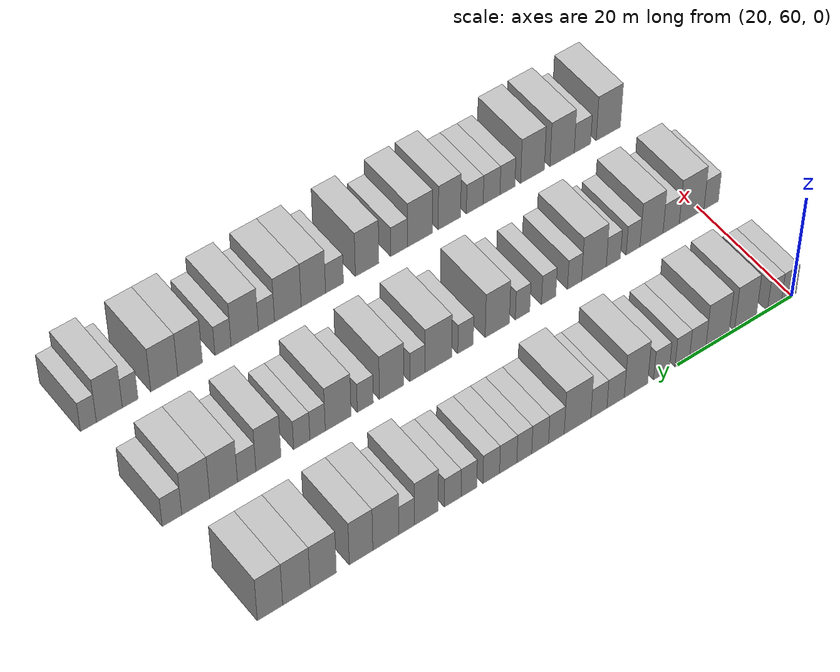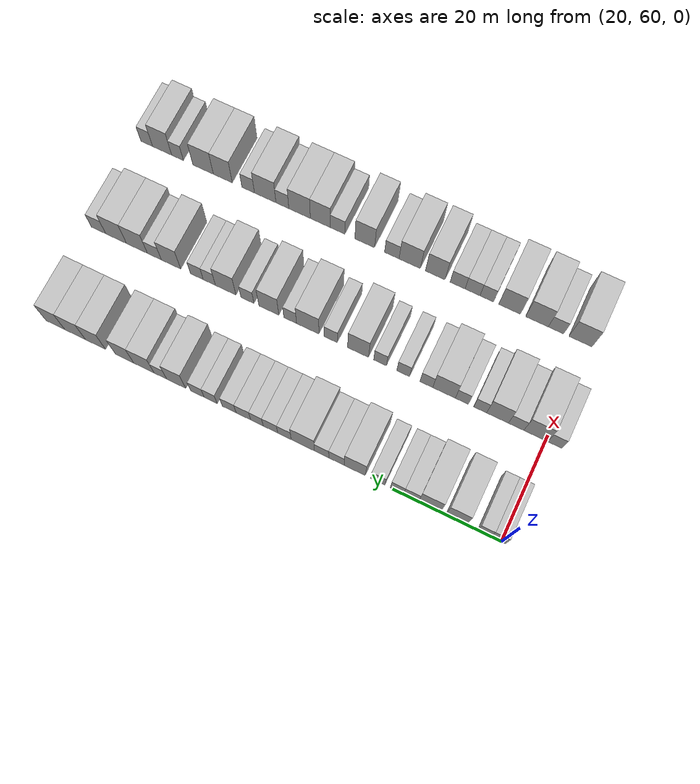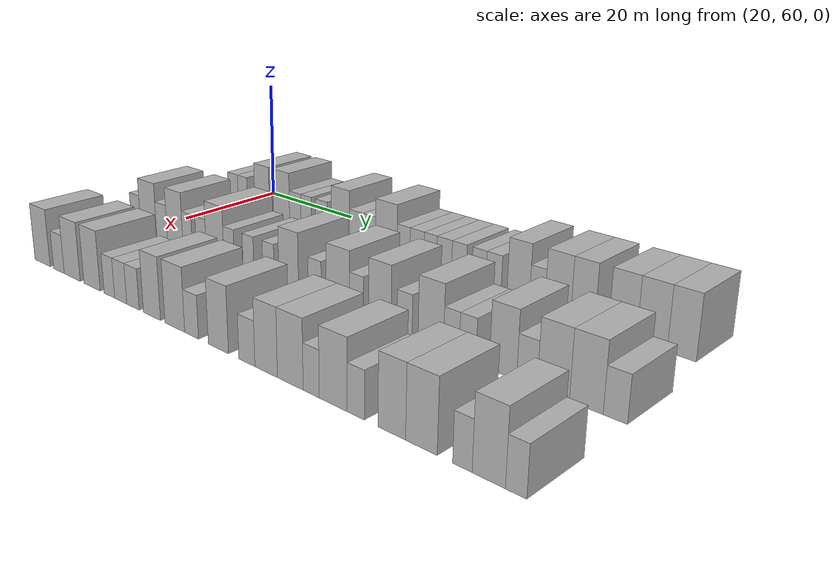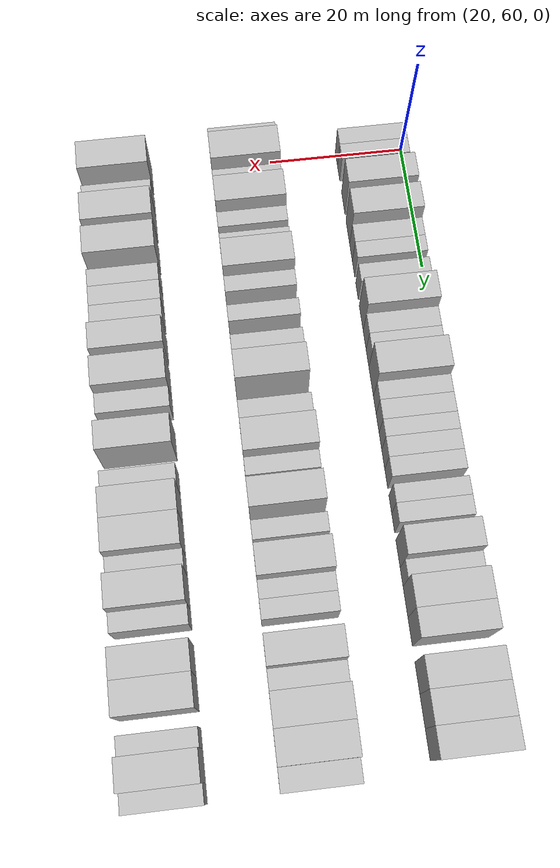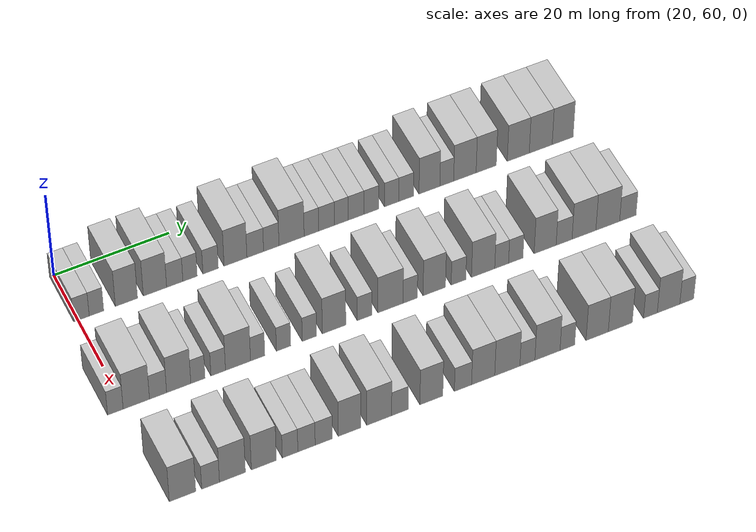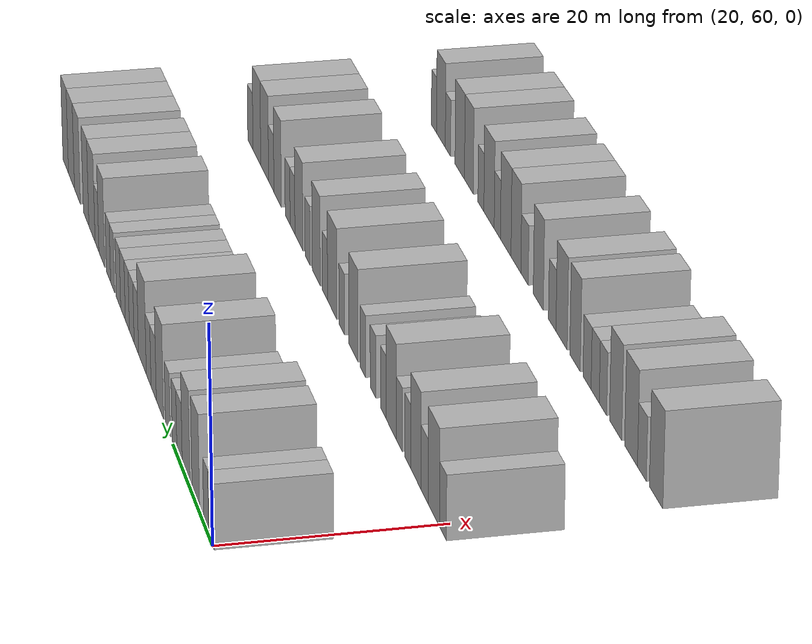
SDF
<sdf version="1.6">
 <world name="default">
  <model name="building_71">
   <static>1</static>
   <pose>25.0000 60.5712 0 0.000000 0.000000 0.000000</pose>
   <link name="link">
    <pose>0 0 3.00 0 0 0</pose>
    <collision name="collision"><geometry><box><size>10.0000 2.6540 6.0000</size></box></geometry></collision>
    <visual name="visual">
     <cast_shadows>0</cast_shadows>
     <geometry><box><size>10.0000 2.6540 6.0000</size></box></geometry>
     <material>
      <script>
       <uri>model://HANNAS_wall/materials/scripts</uri>
       <uri>model://HANNAS_wall/materials/textures</uri>
       <name>vrc/HANNAS_wall</name>
      </script>
     </material>
    </visual>
   </link>
  </model>
  <model name="building_72">
   <static>1</static>
   <pose>25.0000 63.1398 0 0.000000 0.000000 0.000000</pose>
   <link name="link">
    <pose>0 0 3.00 0 0 0</pose>
    <collision name="collision"><geometry><box><size>10.0000 2.4832 6.0000</size></box></geometry></collision>
    <visual name="visual">
     <cast_shadows>0</cast_shadows>
     <geometry><box><size>10.0000 2.4832 6.0000</size></box></geometry>
     <material>
      <script>
       <uri>model://HANNAS_wall/materials/scripts</uri>
       <uri>model://HANNAS_wall/materials/textures</uri>
       <name>vrc/HANNAS_wall</name>
      </script>
     </material>
    </visual>
   </link>
  </model>
  <model name="building_73">
   <static>1</static>
   <pose>25.0000 68.2884 0 0.000000 0.000000 0.000000</pose>
   <link name="link">
    <pose>0 0 4.50 0 0 0</pose>
    <collision name="collision"><geometry><box><size>10.0000 3.8141 9.0000</size></box></geometry></collision>
    <visual name="visual">
     <cast_shadows>0</cast_shadows>
     <geometry><box><size>10.0000 3.8141 9.0000</size></box></geometry>
     <material>
      <script>
       <uri>model://HANNAS_wall/materials/scripts</uri>
       <uri>model://HANNAS_wall/materials/textures</uri>
       <name>vrc/HANNAS_wall</name>
      </script>
     </material>
    </visual>
   </link>
  </model>
  <model name="building_74">
   <static>1</static>
   <pose>25.0000 73.2093 0 0.000000 0.000000 0.000000</pose>
   <link name="link">
    <pose>0 0 4.50 0 0 0</pose>
    <collision name="collision"><geometry><box><size>10.0000 4.0277 9.0000</size></box></geometry></collision>
    <visual name="visual">
     <cast_shadows>0</cast_shadows>
     <geometry><box><size>10.0000 4.0277 9.0000</size></box></geometry>
     <material>
      <script>
       <uri>model://HANNAS_wall/materials/scripts</uri>
       <uri>model://HANNAS_wall/materials/textures</uri>
       <name>vrc/HANNAS_wall</name>
      </script>
     </material>
    </visual>
   </link>
  </model>
  <model name="building_75">
   <static>1</static>
   <pose>25.0000 76.6314 0 0.000000 0.000000 0.000000</pose>
   <link name="link">
    <pose>0 0 3.00 0 0 0</pose>
    <collision name="collision"><geometry><box><size>10.0000 2.8164 6.0000</size></box></geometry></collision>
    <visual name="visual">
     <cast_shadows>0</cast_shadows>
     <geometry><box><size>10.0000 2.8164 6.0000</size></box></geometry>
     <material>
      <script>
       <uri>model://HANNAS_wall/materials/scripts</uri>
       <uri>model://HANNAS_wall/materials/textures</uri>
       <name>vrc/HANNAS_wall</name>
      </script>
     </material>
    </visual>
   </link>
  </model>
  <model name="building_76">
   <static>1</static>
   <pose>25.0000 79.2847 0 0.000000 0.000000 0.000000</pose>
   <link name="link">
    <pose>0 0 3.00 0 0 0</pose>
    <collision name="collision"><geometry><box><size>10.0000 2.4903 6.0000</size></box></geometry></collision>
    <visual name="visual">
     <cast_shadows>0</cast_shadows>
     <geometry><box><size>10.0000 2.4903 6.0000</size></box></geometry>
     <material>
      <script>
       <uri>model://HANNAS_wall/materials/scripts</uri>
       <uri>model://HANNAS_wall/materials/textures</uri>
       <name>vrc/HANNAS_wall</name>
      </script>
     </material>
    </visual>
   </link>
  </model>
  <model name="building_77">
   <static>1</static>
   <pose>25.0000 82.8712 0 0.000000 0.000000 0.000000</pose>
   <link name="link">
    <pose>0 0 3.00 0 0 0</pose>
    <collision name="collision"><geometry><box><size>10.0000 2.6827 6.0000</size></box></geometry></collision>
    <visual name="visual">
     <cast_shadows>0</cast_shadows>
     <geometry><box><size>10.0000 2.6827 6.0000</size></box></geometry>
     <material>
      <script>
       <uri>model://HANNAS_wall/materials/scripts</uri>
       <uri>model://HANNAS_wall/materials/textures</uri>
       <name>vrc/HANNAS_wall</name>
      </script>
     </material>
    </visual>
   </link>
  </model>
  <model name="building_78">
   <static>1</static>
   <pose>25.0000 87.2104 0 0.000000 0.000000 0.000000</pose>
   <link name="link">
    <pose>0 0 4.50 0 0 0</pose>
    <collision name="collision"><geometry><box><size>10.0000 3.9956 9.0000</size></box></geometry></collision>
    <visual name="visual">
     <cast_shadows>0</cast_shadows>
     <geometry><box><size>10.0000 3.9956 9.0000</size></box></geometry>
     <material>
      <script>
       <uri>model://HANNAS_wall/materials/scripts</uri>
       <uri>model://HANNAS_wall/materials/textures</uri>
       <name>vrc/HANNAS_wall</name>
      </script>
     </material>
    </visual>
   </link>
  </model>
  <model name="building_79">
   <static>1</static>
   <pose>25.0000 90.6714 0 0.000000 0.000000 0.000000</pose>
   <link name="link">
    <pose>0 0 3.00 0 0 0</pose>
    <collision name="collision"><geometry><box><size>10.0000 2.9264 6.0000</size></box></geometry></collision>
    <visual name="visual">
     <cast_shadows>0</cast_shadows>
     <geometry><box><size>10.0000 2.9264 6.0000</size></box></geometry>
     <material>
      <script>
       <uri>model://HANNAS_wall/materials/scripts</uri>
       <uri>model://HANNAS_wall/materials/textures</uri>
       <name>vrc/HANNAS_wall</name>
      </script>
     </material>
    </visual>
   </link>
  </model>
  <model name="building_80">
   <static>1</static>
   <pose>25.0000 93.4897 0 0.000000 0.000000 0.000000</pose>
   <link name="link">
    <pose>0 0 3.00 0 0 0</pose>
    <collision name="collision"><geometry><box><size>10.0000 2.7102 6.0000</size></box></geometry></collision>
    <visual name="visual">
     <cast_shadows>0</cast_shadows>
     <geometry><box><size>10.0000 2.7102 6.0000</size></box></geometry>
     <material>
      <script>
       <uri>model://HANNAS_wall/materials/scripts</uri>
       <uri>model://HANNAS_wall/materials/textures</uri>
       <name>vrc/HANNAS_wall</name>
      </script>
     </material>
    </visual>
   </link>
  </model>
  <model name="building_81">
   <static>1</static>
   <pose>25.0000 97.0639 0 0.000000 0.000000 0.000000</pose>
   <link name="link">
    <pose>0 0 4.50 0 0 0</pose>
    <collision name="collision"><geometry><box><size>10.0000 4.4383 9.0000</size></box></geometry></collision>
    <visual name="visual">
     <cast_shadows>0</cast_shadows>
     <geometry><box><size>10.0000 4.4383 9.0000</size></box></geometry>
     <material>
      <script>
       <uri>model://HANNAS_wall/materials/scripts</uri>
       <uri>model://HANNAS_wall/materials/textures</uri>
       <name>vrc/HANNAS_wall</name>
      </script>
     </material>
    </visual>
   </link>
  </model>
  <model name="building_82">
   <static>1</static>
   <pose>25.0000 100.5764 0 0.000000 0.000000 0.000000</pose>
   <link name="link">
    <pose>0 0 3.00 0 0 0</pose>
    <collision name="collision"><geometry><box><size>10.0000 2.5867 6.0000</size></box></geometry></collision>
    <visual name="visual">
     <cast_shadows>0</cast_shadows>
     <geometry><box><size>10.0000 2.5867 6.0000</size></box></geometry>
     <material>
      <script>
       <uri>model://HANNAS_wall/materials/scripts</uri>
       <uri>model://HANNAS_wall/materials/textures</uri>
       <name>vrc/HANNAS_wall</name>
      </script>
     </material>
    </visual>
   </link>
  </model>
  <model name="building_83">
   <static>1</static>
   <pose>25.0000 103.2610 0 0.000000 0.000000 0.000000</pose>
   <link name="link">
    <pose>0 0 3.00 0 0 0</pose>
    <collision name="collision"><geometry><box><size>10.0000 2.7825 6.0000</size></box></geometry></collision>
    <visual name="visual">
     <cast_shadows>0</cast_shadows>
     <geometry><box><size>10.0000 2.7825 6.0000</size></box></geometry>
     <material>
      <script>
       <uri>model://HANNAS_wall/materials/scripts</uri>
       <uri>model://HANNAS_wall/materials/textures</uri>
       <name>vrc/HANNAS_wall</name>
      </script>
     </material>
    </visual>
   </link>
  </model>
  <model name="building_84">
   <static>1</static>
   <pose>25.0000 105.8750 0 0.000000 0.000000 0.000000</pose>
   <link name="link">
    <pose>0 0 3.00 0 0 0</pose>
    <collision name="collision"><geometry><box><size>10.0000 2.4456 6.0000</size></box></geometry></collision>
    <visual name="visual">
     <cast_shadows>0</cast_shadows>
     <geometry><box><size>10.0000 2.4456 6.0000</size></box></geometry>
     <material>
      <script>
       <uri>model://HANNAS_wall/materials/scripts</uri>
       <uri>model://HANNAS_wall/materials/textures</uri>
       <name>vrc/HANNAS_wall</name>
      </script>
     </material>
    </visual>
   </link>
  </model>
  <model name="building_85">
   <static>1</static>
   <pose>25.0000 108.4999 0 0.000000 0.000000 0.000000</pose>
   <link name="link">
    <pose>0 0 3.00 0 0 0</pose>
    <collision name="collision"><geometry><box><size>10.0000 2.8043 6.0000</size></box></geometry></collision>
    <visual name="visual">
     <cast_shadows>0</cast_shadows>
     <geometry><box><size>10.0000 2.8043 6.0000</size></box></geometry>
     <material>
      <script>
       <uri>model://HANNAS_wall/materials/scripts</uri>
       <uri>model://HANNAS_wall/materials/textures</uri>
       <name>vrc/HANNAS_wall</name>
      </script>
     </material>
    </visual>
   </link>
  </model>
  <model name="building_86">
   <static>1</static>
   <pose>25.0000 111.2520 0 0.000000 0.000000 0.000000</pose>
   <link name="link">
    <pose>0 0 3.00 0 0 0</pose>
    <collision name="collision"><geometry><box><size>10.0000 2.6998 6.0000</size></box></geometry></collision>
    <visual name="visual">
     <cast_shadows>0</cast_shadows>
     <geometry><box><size>10.0000 2.6998 6.0000</size></box></geometry>
     <material>
      <script>
       <uri>model://HANNAS_wall/materials/scripts</uri>
       <uri>model://HANNAS_wall/materials/textures</uri>
       <name>vrc/HANNAS_wall</name>
      </script>
     </material>
    </visual>
   </link>
  </model>
  <model name="building_87">
   <static>1</static>
   <pose>25.0000 114.8677 0 0.000000 0.000000 0.000000</pose>
   <link name="link">
    <pose>0 0 3.00 0 0 0</pose>
    <collision name="collision"><geometry><box><size>10.0000 2.5315 6.0000</size></box></geometry></collision>
    <visual name="visual">
     <cast_shadows>0</cast_shadows>
     <geometry><box><size>10.0000 2.5315 6.0000</size></box></geometry>
     <material>
      <script>
       <uri>model://HANNAS_wall/materials/scripts</uri>
       <uri>model://HANNAS_wall/materials/textures</uri>
       <name>vrc/HANNAS_wall</name>
      </script>
     </material>
    </visual>
   </link>
  </model>
  <model name="building_88">
   <static>1</static>
   <pose>25.0000 117.4614 0 0.000000 0.000000 0.000000</pose>
   <link name="link">
    <pose>0 0 3.00 0 0 0</pose>
    <collision name="collision"><geometry><box><size>10.0000 2.6558 6.0000</size></box></geometry></collision>
    <visual name="visual">
     <cast_shadows>0</cast_shadows>
     <geometry><box><size>10.0000 2.6558 6.0000</size></box></geometry>
     <material>
      <script>
       <uri>model://HANNAS_wall/materials/scripts</uri>
       <uri>model://HANNAS_wall/materials/textures</uri>
       <name>vrc/HANNAS_wall</name>
      </script>
     </material>
    </visual>
   </link>
  </model>
  <model name="building_89">
   <static>1</static>
   <pose>25.0000 121.6693 0 0.000000 0.000000 0.000000</pose>
   <link name="link">
    <pose>0 0 4.50 0 0 0</pose>
    <collision name="collision"><geometry><box><size>10.0000 3.7600 9.0000</size></box></geometry></collision>
    <visual name="visual">
     <cast_shadows>0</cast_shadows>
     <geometry><box><size>10.0000 3.7600 9.0000</size></box></geometry>
     <material>
      <script>
       <uri>model://HANNAS_wall/materials/scripts</uri>
       <uri>model://HANNAS_wall/materials/textures</uri>
       <name>vrc/HANNAS_wall</name>
      </script>
     </material>
    </visual>
   </link>
  </model>
  <model name="building_90">
   <static>1</static>
   <pose>25.0000 124.7961 0 0.000000 0.000000 0.000000</pose>
   <link name="link">
    <pose>0 0 3.00 0 0 0</pose>
    <collision name="collision"><geometry><box><size>10.0000 2.4937 6.0000</size></box></geometry></collision>
    <visual name="visual">
     <cast_shadows>0</cast_shadows>
     <geometry><box><size>10.0000 2.4937 6.0000</size></box></geometry>
     <material>
      <script>
       <uri>model://HANNAS_wall/materials/scripts</uri>
       <uri>model://HANNAS_wall/materials/textures</uri>
       <name>vrc/HANNAS_wall</name>
      </script>
     </material>
    </visual>
   </link>
  </model>
  <model name="building_91">
   <static>1</static>
   <pose>25.0000 128.0815 0 0.000000 0.000000 0.000000</pose>
   <link name="link">
    <pose>0 0 4.50 0 0 0</pose>
    <collision name="collision"><geometry><box><size>10.0000 4.0770 9.0000</size></box></geometry></collision>
    <visual name="visual">
     <cast_shadows>0</cast_shadows>
     <geometry><box><size>10.0000 4.0770 9.0000</size></box></geometry>
     <material>
      <script>
       <uri>model://HANNAS_wall/materials/scripts</uri>
       <uri>model://HANNAS_wall/materials/textures</uri>
       <name>vrc/HANNAS_wall</name>
      </script>
     </material>
    </visual>
   </link>
  </model>
  <model name="building_92">
   <static>1</static>
   <pose>25.0000 131.9571 0 0.000000 0.000000 0.000000</pose>
   <link name="link">
    <pose>0 0 4.50 0 0 0</pose>
    <collision name="collision"><geometry><box><size>10.0000 3.6742 9.0000</size></box></geometry></collision>
    <visual name="visual">
     <cast_shadows>0</cast_shadows>
     <geometry><box><size>10.0000 3.6742 9.0000</size></box></geometry>
     <material>
      <script>
       <uri>model://HANNAS_wall/materials/scripts</uri>
       <uri>model://HANNAS_wall/materials/textures</uri>
       <name>vrc/HANNAS_wall</name>
      </script>
     </material>
    </visual>
   </link>
  </model>
  <model name="building_93">
   <static>1</static>
   <pose>25.0000 137.8083 0 0.000000 0.000000 0.000000</pose>
   <link name="link">
    <pose>0 0 4.50 0 0 0</pose>
    <collision name="collision"><geometry><box><size>10.0000 4.0283 9.0000</size></box></geometry></collision>
    <visual name="visual">
     <cast_shadows>0</cast_shadows>
     <geometry><box><size>10.0000 4.0283 9.0000</size></box></geometry>
     <material>
      <script>
       <uri>model://HANNAS_wall/materials/scripts</uri>
       <uri>model://HANNAS_wall/materials/textures</uri>
       <name>vrc/HANNAS_wall</name>
      </script>
     </material>
    </visual>
   </link>
  </model>
  <model name="building_94">
   <static>1</static>
   <pose>25.0000 141.9244 0 0.000000 0.000000 0.000000</pose>
   <link name="link">
    <pose>0 0 4.50 0 0 0</pose>
    <collision name="collision"><geometry><box><size>10.0000 4.2038 9.0000</size></box></geometry></collision>
    <visual name="visual">
     <cast_shadows>0</cast_shadows>
     <geometry><box><size>10.0000 4.2038 9.0000</size></box></geometry>
     <material>
      <script>
       <uri>model://HANNAS_wall/materials/scripts</uri>
       <uri>model://HANNAS_wall/materials/textures</uri>
       <name>vrc/HANNAS_wall</name>
      </script>
     </material>
    </visual>
   </link>
  </model>
  <model name="building_95">
   <static>1</static>
   <pose>25.0000 145.9572 0 0.000000 0.000000 0.000000</pose>
   <link name="link">
    <pose>0 0 4.50 0 0 0</pose>
    <collision name="collision"><geometry><box><size>10.0000 3.8618 9.0000</size></box></geometry></collision>
    <visual name="visual">
     <cast_shadows>0</cast_shadows>
     <geometry><box><size>10.0000 3.8618 9.0000</size></box></geometry>
     <material>
      <script>
       <uri>model://HANNAS_wall/materials/scripts</uri>
       <uri>model://HANNAS_wall/materials/textures</uri>
       <name>vrc/HANNAS_wall</name>
      </script>
     </material>
    </visual>
   </link>
  </model>
  <model name="building_196">
   <static>1</static>
   <pose>44.0000 58.3054 0 0.000000 0.000000 0.000000</pose>
   <link name="link">
    <pose>0 0 3.00 0 0 0</pose>
    <collision name="collision"><geometry><box><size>10.0000 2.6232 6.0000</size></box></geometry></collision>
    <visual name="visual">
     <cast_shadows>0</cast_shadows>
     <geometry><box><size>10.0000 2.6232 6.0000</size></box></geometry>
     <material>
      <script>
       <uri>model://HANNAS_wall/materials/scripts</uri>
       <uri>model://HANNAS_wall/materials/textures</uri>
       <name>vrc/HANNAS_wall</name>
      </script>
     </material>
    </visual>
   </link>
  </model>
  <model name="building_197">
   <static>1</static>
   <pose>44.0000 61.8358 0 0.000000 0.000000 0.000000</pose>
   <link name="link">
    <pose>0 0 4.50 0 0 0</pose>
    <collision name="collision"><geometry><box><size>10.0000 4.4376 9.0000</size></box></geometry></collision>
    <visual name="visual">
     <cast_shadows>0</cast_shadows>
     <geometry><box><size>10.0000 4.4376 9.0000</size></box></geometry>
     <material>
      <script>
       <uri>model://HANNAS_wall/materials/scripts</uri>
       <uri>model://HANNAS_wall/materials/textures</uri>
       <name>vrc/HANNAS_wall</name>
      </script>
     </material>
    </visual>
   </link>
  </model>
  <model name="building_198">
   <static>1</static>
   <pose>44.0000 65.5013 0 0.000000 0.000000 0.000000</pose>
   <link name="link">
    <pose>0 0 3.00 0 0 0</pose>
    <collision name="collision"><geometry><box><size>10.0000 2.8932 6.0000</size></box></geometry></collision>
    <visual name="visual">
     <cast_shadows>0</cast_shadows>
     <geometry><box><size>10.0000 2.8932 6.0000</size></box></geometry>
     <material>
      <script>
       <uri>model://HANNAS_wall/materials/scripts</uri>
       <uri>model://HANNAS_wall/materials/textures</uri>
       <name>vrc/HANNAS_wall</name>
      </script>
     </material>
    </visual>
   </link>
  </model>
  <model name="building_199">
   <static>1</static>
   <pose>44.0000 69.0012 0 0.000000 0.000000 0.000000</pose>
   <link name="link">
    <pose>0 0 4.50 0 0 0</pose>
    <collision name="collision"><geometry><box><size>10.0000 4.1068 9.0000</size></box></geometry></collision>
    <visual name="visual">
     <cast_shadows>0</cast_shadows>
     <geometry><box><size>10.0000 4.1068 9.0000</size></box></geometry>
     <material>
      <script>
       <uri>model://HANNAS_wall/materials/scripts</uri>
       <uri>model://HANNAS_wall/materials/textures</uri>
       <name>vrc/HANNAS_wall</name>
      </script>
     </material>
    </visual>
   </link>
  </model>
  <model name="building_200">
   <static>1</static>
   <pose>44.0000 72.2712 0 0.000000 0.000000 0.000000</pose>
   <link name="link">
    <pose>0 0 3.00 0 0 0</pose>
    <collision name="collision"><geometry><box><size>10.0000 2.4332 6.0000</size></box></geometry></collision>
    <visual name="visual">
     <cast_shadows>0</cast_shadows>
     <geometry><box><size>10.0000 2.4332 6.0000</size></box></geometry>
     <material>
      <script>
       <uri>model://HANNAS_wall/materials/scripts</uri>
       <uri>model://HANNAS_wall/materials/textures</uri>
       <name>vrc/HANNAS_wall</name>
      </script>
     </material>
    </visual>
   </link>
  </model>
  <model name="building_201">
   <static>1</static>
   <pose>44.0000 75.7303 0 0.000000 0.000000 0.000000</pose>
   <link name="link">
    <pose>0 0 3.00 0 0 0</pose>
    <collision name="collision"><geometry><box><size>10.0000 2.4849 6.0000</size></box></geometry></collision>
    <visual name="visual">
     <cast_shadows>0</cast_shadows>
     <geometry><box><size>10.0000 2.4849 6.0000</size></box></geometry>
     <material>
      <script>
       <uri>model://HANNAS_wall/materials/scripts</uri>
       <uri>model://HANNAS_wall/materials/textures</uri>
       <name>vrc/HANNAS_wall</name>
      </script>
     </material>
    </visual>
   </link>
  </model>
  <model name="building_202">
   <static>1</static>
   <pose>44.0000 79.1172 0 0.000000 0.000000 0.000000</pose>
   <link name="link">
    <pose>0 0 4.50 0 0 0</pose>
    <collision name="collision"><geometry><box><size>10.0000 4.2888 9.0000</size></box></geometry></collision>
    <visual name="visual">
     <cast_shadows>0</cast_shadows>
     <geometry><box><size>10.0000 4.2888 9.0000</size></box></geometry>
     <material>
      <script>
       <uri>model://HANNAS_wall/materials/scripts</uri>
       <uri>model://HANNAS_wall/materials/textures</uri>
       <name>vrc/HANNAS_wall</name>
      </script>
     </material>
    </visual>
   </link>
  </model>
  <model name="building_203">
   <static>1</static>
   <pose>44.0000 82.4905 0 0.000000 0.000000 0.000000</pose>
   <link name="link">
    <pose>0 0 3.00 0 0 0</pose>
    <collision name="collision"><geometry><box><size>10.0000 2.4577 6.0000</size></box></geometry></collision>
    <visual name="visual">
     <cast_shadows>0</cast_shadows>
     <geometry><box><size>10.0000 2.4577 6.0000</size></box></geometry>
     <material>
      <script>
       <uri>model://HANNAS_wall/materials/scripts</uri>
       <uri>model://HANNAS_wall/materials/textures</uri>
       <name>vrc/HANNAS_wall</name>
      </script>
     </material>
    </visual>
   </link>
  </model>
  <model name="building_204">
   <static>1</static>
   <pose>44.0000 86.9514 0 0.000000 0.000000 0.000000</pose>
   <link name="link">
    <pose>0 0 3.00 0 0 0</pose>
    <collision name="collision"><geometry><box><size>10.0000 2.4642 6.0000</size></box></geometry></collision>
    <visual name="visual">
     <cast_shadows>0</cast_shadows>
     <geometry><box><size>10.0000 2.4642 6.0000</size></box></geometry>
     <material>
      <script>
       <uri>model://HANNAS_wall/materials/scripts</uri>
       <uri>model://HANNAS_wall/materials/textures</uri>
       <name>vrc/HANNAS_wall</name>
      </script>
     </material>
    </visual>
   </link>
  </model>
  <model name="building_205">
   <static>1</static>
   <pose>44.0000 91.4185 0 0.000000 0.000000 0.000000</pose>
   <link name="link">
    <pose>0 0 3.00 0 0 0</pose>
    <collision name="collision"><geometry><box><size>10.0000 2.4701 6.0000</size></box></geometry></collision>
    <visual name="visual">
     <cast_shadows>0</cast_shadows>
     <geometry><box><size>10.0000 2.4701 6.0000</size></box></geometry>
     <material>
      <script>
       <uri>model://HANNAS_wall/materials/scripts</uri>
       <uri>model://HANNAS_wall/materials/textures</uri>
       <name>vrc/HANNAS_wall</name>
      </script>
     </material>
    </visual>
   </link>
  </model>
  <model name="building_206">
   <static>1</static>
   <pose>44.0000 95.6963 0 0.000000 0.000000 0.000000</pose>
   <link name="link">
    <pose>0 0 4.50 0 0 0</pose>
    <collision name="collision"><geometry><box><size>10.0000 4.0855 9.0000</size></box></geometry></collision>
    <visual name="visual">
     <cast_shadows>0</cast_shadows>
     <geometry><box><size>10.0000 4.0855 9.0000</size></box></geometry>
     <material>
      <script>
       <uri>model://HANNAS_wall/materials/scripts</uri>
       <uri>model://HANNAS_wall/materials/textures</uri>
       <name>vrc/HANNAS_wall</name>
      </script>
     </material>
    </visual>
   </link>
  </model>
  <model name="building_207">
   <static>1</static>
   <pose>44.0000 101.0353 0 0.000000 0.000000 0.000000</pose>
   <link name="link">
    <pose>0 0 3.00 0 0 0</pose>
    <collision name="collision"><geometry><box><size>10.0000 2.5924 6.0000</size></box></geometry></collision>
    <visual name="visual">
     <cast_shadows>0</cast_shadows>
     <geometry><box><size>10.0000 2.5924 6.0000</size></box></geometry>
     <material>
      <script>
       <uri>model://HANNAS_wall/materials/scripts</uri>
       <uri>model://HANNAS_wall/materials/textures</uri>
       <name>vrc/HANNAS_wall</name>
      </script>
     </material>
    </visual>
   </link>
  </model>
  <model name="building_208">
   <static>1</static>
   <pose>44.0000 105.5466 0 0.000000 0.000000 0.000000</pose>
   <link name="link">
    <pose>0 0 4.50 0 0 0</pose>
    <collision name="collision"><geometry><box><size>10.0000 4.4301 9.0000</size></box></geometry></collision>
    <visual name="visual">
     <cast_shadows>0</cast_shadows>
     <geometry><box><size>10.0000 4.4301 9.0000</size></box></geometry>
     <material>
      <script>
       <uri>model://HANNAS_wall/materials/scripts</uri>
       <uri>model://HANNAS_wall/materials/textures</uri>
       <name>vrc/HANNAS_wall</name>
      </script>
     </material>
    </visual>
   </link>
  </model>
  <model name="building_209">
   <static>1</static>
   <pose>44.0000 109.0167 0 0.000000 0.000000 0.000000</pose>
   <link name="link">
    <pose>0 0 3.00 0 0 0</pose>
    <collision name="collision"><geometry><box><size>10.0000 2.5102 6.0000</size></box></geometry></collision>
    <visual name="visual">
     <cast_shadows>0</cast_shadows>
     <geometry><box><size>10.0000 2.5102 6.0000</size></box></geometry>
     <material>
      <script>
       <uri>model://HANNAS_wall/materials/scripts</uri>
       <uri>model://HANNAS_wall/materials/textures</uri>
       <name>vrc/HANNAS_wall</name>
      </script>
     </material>
    </visual>
   </link>
  </model>
  <model name="building_210">
   <static>1</static>
   <pose>44.0000 113.2557 0 0.000000 0.000000 0.000000</pose>
   <link name="link">
    <pose>0 0 4.50 0 0 0</pose>
    <collision name="collision"><geometry><box><size>10.0000 3.9678 9.0000</size></box></geometry></collision>
    <visual name="visual">
     <cast_shadows>0</cast_shadows>
     <geometry><box><size>10.0000 3.9678 9.0000</size></box></geometry>
     <material>
      <script>
       <uri>model://HANNAS_wall/materials/scripts</uri>
       <uri>model://HANNAS_wall/materials/textures</uri>
       <name>vrc/HANNAS_wall</name>
      </script>
     </material>
    </visual>
   </link>
  </model>
  <model name="building_211">
   <static>1</static>
   <pose>44.0000 117.5394 0 0.000000 0.000000 0.000000</pose>
   <link name="link">
    <pose>0 0 3.00 0 0 0</pose>
    <collision name="collision"><geometry><box><size>10.0000 2.5995 6.0000</size></box></geometry></collision>
    <visual name="visual">
     <cast_shadows>0</cast_shadows>
     <geometry><box><size>10.0000 2.5995 6.0000</size></box></geometry>
     <material>
      <script>
       <uri>model://HANNAS_wall/materials/scripts</uri>
       <uri>model://HANNAS_wall/materials/textures</uri>
       <name>vrc/HANNAS_wall</name>
      </script>
     </material>
    </visual>
   </link>
  </model>
  <model name="building_212">
   <static>1</static>
   <pose>44.0000 121.9119 0 0.000000 0.000000 0.000000</pose>
   <link name="link">
    <pose>0 0 4.50 0 0 0</pose>
    <collision name="collision"><geometry><box><size>10.0000 4.1455 9.0000</size></box></geometry></collision>
    <visual name="visual">
     <cast_shadows>0</cast_shadows>
     <geometry><box><size>10.0000 4.1455 9.0000</size></box></geometry>
     <material>
      <script>
       <uri>model://HANNAS_wall/materials/scripts</uri>
       <uri>model://HANNAS_wall/materials/textures</uri>
       <name>vrc/HANNAS_wall</name>
      </script>
     </material>
    </visual>
   </link>
  </model>
  <model name="building_213">
   <static>1</static>
   <pose>44.0000 125.2175 0 0.000000 0.000000 0.000000</pose>
   <link name="link">
    <pose>0 0 3.00 0 0 0</pose>
    <collision name="collision"><geometry><box><size>10.0000 2.4658 6.0000</size></box></geometry></collision>
    <visual name="visual">
     <cast_shadows>0</cast_shadows>
     <geometry><box><size>10.0000 2.4658 6.0000</size></box></geometry>
     <material>
      <script>
       <uri>model://HANNAS_wall/materials/scripts</uri>
       <uri>model://HANNAS_wall/materials/textures</uri>
       <name>vrc/HANNAS_wall</name>
      </script>
     </material>
    </visual>
   </link>
  </model>
  <model name="building_214">
   <static>1</static>
   <pose>44.0000 127.7398 0 0.000000 0.000000 0.000000</pose>
   <link name="link">
    <pose>0 0 3.00 0 0 0</pose>
    <collision name="collision"><geometry><box><size>10.0000 2.5787 6.0000</size></box></geometry></collision>
    <visual name="visual">
     <cast_shadows>0</cast_shadows>
     <geometry><box><size>10.0000 2.5787 6.0000</size></box></geometry>
     <material>
      <script>
       <uri>model://HANNAS_wall/materials/scripts</uri>
       <uri>model://HANNAS_wall/materials/textures</uri>
       <name>vrc/HANNAS_wall</name>
      </script>
     </material>
    </visual>
   </link>
  </model>
  <model name="building_215">
   <static>1</static>
   <pose>44.0000 133.0073 0 0.000000 0.000000 0.000000</pose>
   <link name="link">
    <pose>0 0 4.50 0 0 0</pose>
    <collision name="collision"><geometry><box><size>10.0000 3.9563 9.0000</size></box></geometry></collision>
    <visual name="visual">
     <cast_shadows>0</cast_shadows>
     <geometry><box><size>10.0000 3.9563 9.0000</size></box></geometry>
     <material>
      <script>
       <uri>model://HANNAS_wall/materials/scripts</uri>
       <uri>model://HANNAS_wall/materials/textures</uri>
       <name>vrc/HANNAS_wall</name>
      </script>
     </material>
    </visual>
   </link>
  </model>
  <model name="building_216">
   <static>1</static>
   <pose>44.0000 136.4200 0 0.000000 0.000000 0.000000</pose>
   <link name="link">
    <pose>0 0 3.00 0 0 0</pose>
    <collision name="collision"><geometry><box><size>10.0000 2.8691 6.0000</size></box></geometry></collision>
    <visual name="visual">
     <cast_shadows>0</cast_shadows>
     <geometry><box><size>10.0000 2.8691 6.0000</size></box></geometry>
     <material>
      <script>
       <uri>model://HANNAS_wall/materials/scripts</uri>
       <uri>model://HANNAS_wall/materials/textures</uri>
       <name>vrc/HANNAS_wall</name>
      </script>
     </material>
    </visual>
   </link>
  </model>
  <model name="building_217">
   <static>1</static>
   <pose>44.0000 140.0137 0 0.000000 0.000000 0.000000</pose>
   <link name="link">
    <pose>0 0 4.50 0 0 0</pose>
    <collision name="collision"><geometry><box><size>10.0000 4.3182 9.0000</size></box></geometry></collision>
    <visual name="visual">
     <cast_shadows>0</cast_shadows>
     <geometry><box><size>10.0000 4.3182 9.0000</size></box></geometry>
     <material>
      <script>
       <uri>model://HANNAS_wall/materials/scripts</uri>
       <uri>model://HANNAS_wall/materials/textures</uri>
       <name>vrc/HANNAS_wall</name>
      </script>
     </material>
    </visual>
   </link>
  </model>
  <model name="building_218">
   <static>1</static>
   <pose>44.0000 144.3279 0 0.000000 0.000000 0.000000</pose>
   <link name="link">
    <pose>0 0 4.50 0 0 0</pose>
    <collision name="collision"><geometry><box><size>10.0000 4.3103 9.0000</size></box></geometry></collision>
    <visual name="visual">
     <cast_shadows>0</cast_shadows>
     <geometry><box><size>10.0000 4.3103 9.0000</size></box></geometry>
     <material>
      <script>
       <uri>model://HANNAS_wall/materials/scripts</uri>
       <uri>model://HANNAS_wall/materials/textures</uri>
       <name>vrc/HANNAS_wall</name>
      </script>
     </material>
    </visual>
   </link>
  </model>
  <model name="building_219">
   <static>1</static>
   <pose>44.0000 147.9768 0 0.000000 0.000000 0.000000</pose>
   <link name="link">
    <pose>0 0 3.00 0 0 0</pose>
    <collision name="collision"><geometry><box><size>10.0000 2.9876 6.0000</size></box></geometry></collision>
    <visual name="visual">
     <cast_shadows>0</cast_shadows>
     <geometry><box><size>10.0000 2.9876 6.0000</size></box></geometry>
     <material>
      <script>
       <uri>model://HANNAS_wall/materials/scripts</uri>
       <uri>model://HANNAS_wall/materials/textures</uri>
       <name>vrc/HANNAS_wall</name>
      </script>
     </material>
    </visual>
   </link>
  </model>
  <model name="building_306">
   <static>1</static>
   <pose>63.0000 61.3225 0 0.000000 0.000000 0.000000</pose>
   <link name="link">
    <pose>0 0 4.50 0 0 0</pose>
    <collision name="collision"><geometry><box><size>10.0000 4.3930 9.0000</size></box></geometry></collision>
    <visual name="visual">
     <cast_shadows>0</cast_shadows>
     <geometry><box><size>10.0000 4.3930 9.0000</size></box></geometry>
     <material>
      <script>
       <uri>model://HANNAS_wall/materials/scripts</uri>
       <uri>model://HANNAS_wall/materials/textures</uri>
       <name>vrc/HANNAS_wall</name>
      </script>
     </material>
    </visual>
   </link>
  </model>
  <model name="building_307">
   <static>1</static>
   <pose>63.0000 65.9971 0 0.000000 0.000000 0.000000</pose>
   <link name="link">
    <pose>0 0 3.00 0 0 0</pose>
    <collision name="collision"><geometry><box><size>10.0000 2.9562 6.0000</size></box></geometry></collision>
    <visual name="visual">
     <cast_shadows>0</cast_shadows>
     <geometry><box><size>10.0000 2.9562 6.0000</size></box></geometry>
     <material>
      <script>
       <uri>model://HANNAS_wall/materials/scripts</uri>
       <uri>model://HANNAS_wall/materials/textures</uri>
       <name>vrc/HANNAS_wall</name>
      </script>
     </material>
    </visual>
   </link>
  </model>
  <model name="building_308">
   <static>1</static>
   <pose>63.0000 69.6465 0 0.000000 0.000000 0.000000</pose>
   <link name="link">
    <pose>0 0 4.50 0 0 0</pose>
    <collision name="collision"><geometry><box><size>10.0000 4.3426 9.0000</size></box></geometry></collision>
    <visual name="visual">
     <cast_shadows>0</cast_shadows>
     <geometry><box><size>10.0000 4.3426 9.0000</size></box></geometry>
     <material>
      <script>
       <uri>model://HANNAS_wall/materials/scripts</uri>
       <uri>model://HANNAS_wall/materials/textures</uri>
       <name>vrc/HANNAS_wall</name>
      </script>
     </material>
    </visual>
   </link>
  </model>
  <model name="building_309">
   <static>1</static>
   <pose>63.0000 74.9219 0 0.000000 0.000000 0.000000</pose>
   <link name="link">
    <pose>0 0 4.50 0 0 0</pose>
    <collision name="collision"><geometry><box><size>10.0000 4.2082 9.0000</size></box></geometry></collision>
    <visual name="visual">
     <cast_shadows>0</cast_shadows>
     <geometry><box><size>10.0000 4.2082 9.0000</size></box></geometry>
     <material>
      <script>
       <uri>model://HANNAS_wall/materials/scripts</uri>
       <uri>model://HANNAS_wall/materials/textures</uri>
       <name>vrc/HANNAS_wall</name>
      </script>
     </material>
    </visual>
   </link>
  </model>
  <model name="building_310">
   <static>1</static>
   <pose>63.0000 79.3399 0 0.000000 0.000000 0.000000</pose>
   <link name="link">
    <pose>0 0 3.00 0 0 0</pose>
    <collision name="collision"><geometry><box><size>10.0000 2.6278 6.0000</size></box></geometry></collision>
    <visual name="visual">
     <cast_shadows>0</cast_shadows>
     <geometry><box><size>10.0000 2.6278 6.0000</size></box></geometry>
     <material>
      <script>
       <uri>model://HANNAS_wall/materials/scripts</uri>
       <uri>model://HANNAS_wall/materials/textures</uri>
       <name>vrc/HANNAS_wall</name>
      </script>
     </material>
    </visual>
   </link>
  </model>
  <model name="building_311">
   <static>1</static>
   <pose>63.0000 82.1185 0 0.000000 0.000000 0.000000</pose>
   <link name="link">
    <pose>0 0 3.00 0 0 0</pose>
    <collision name="collision"><geometry><box><size>10.0000 2.9294 6.0000</size></box></geometry></collision>
    <visual name="visual">
     <cast_shadows>0</cast_shadows>
     <geometry><box><size>10.0000 2.9294 6.0000</size></box></geometry>
     <material>
      <script>
       <uri>model://HANNAS_wall/materials/scripts</uri>
       <uri>model://HANNAS_wall/materials/textures</uri>
       <name>vrc/HANNAS_wall</name>
      </script>
     </material>
    </visual>
   </link>
  </model>
  <model name="building_312">
   <static>1</static>
   <pose>63.0000 85.0463 0 0.000000 0.000000 0.000000</pose>
   <link name="link">
    <pose>0 0 3.00 0 0 0</pose>
    <collision name="collision"><geometry><box><size>10.0000 2.9262 6.0000</size></box></geometry></collision>
    <visual name="visual">
     <cast_shadows>0</cast_shadows>
     <geometry><box><size>10.0000 2.9262 6.0000</size></box></geometry>
     <material>
      <script>
       <uri>model://HANNAS_wall/materials/scripts</uri>
       <uri>model://HANNAS_wall/materials/textures</uri>
       <name>vrc/HANNAS_wall</name>
      </script>
     </material>
    </visual>
   </link>
  </model>
  <model name="building_313">
   <static>1</static>
   <pose>63.0000 89.4427 0 0.000000 0.000000 0.000000</pose>
   <link name="link">
    <pose>0 0 4.50 0 0 0</pose>
    <collision name="collision"><geometry><box><size>10.0000 3.8665 9.0000</size></box></geometry></collision>
    <visual name="visual">
     <cast_shadows>0</cast_shadows>
     <geometry><box><size>10.0000 3.8665 9.0000</size></box></geometry>
     <material>
      <script>
       <uri>model://HANNAS_wall/materials/scripts</uri>
       <uri>model://HANNAS_wall/materials/textures</uri>
       <name>vrc/HANNAS_wall</name>
      </script>
     </material>
    </visual>
   </link>
  </model>
  <model name="building_314">
   <static>1</static>
   <pose>63.0000 94.4953 0 0.000000 0.000000 0.000000</pose>
   <link name="link">
    <pose>0 0 4.50 0 0 0</pose>
    <collision name="collision"><geometry><box><size>10.0000 4.2386 9.0000</size></box></geometry></collision>
    <visual name="visual">
     <cast_shadows>0</cast_shadows>
     <geometry><box><size>10.0000 4.2386 9.0000</size></box></geometry>
     <material>
      <script>
       <uri>model://HANNAS_wall/materials/scripts</uri>
       <uri>model://HANNAS_wall/materials/textures</uri>
       <name>vrc/HANNAS_wall</name>
      </script>
     </material>
    </visual>
   </link>
  </model>
  <model name="building_315">
   <static>1</static>
   <pose>63.0000 98.0509 0 0.000000 0.000000 0.000000</pose>
   <link name="link">
    <pose>0 0 3.00 0 0 0</pose>
    <collision name="collision"><geometry><box><size>10.0000 2.8728 6.0000</size></box></geometry></collision>
    <visual name="visual">
     <cast_shadows>0</cast_shadows>
     <geometry><box><size>10.0000 2.8728 6.0000</size></box></geometry>
     <material>
      <script>
       <uri>model://HANNAS_wall/materials/scripts</uri>
       <uri>model://HANNAS_wall/materials/textures</uri>
       <name>vrc/HANNAS_wall</name>
      </script>
     </material>
    </visual>
   </link>
  </model>
  <model name="building_316">
   <static>1</static>
   <pose>63.0000 103.4668 0 0.000000 0.000000 0.000000</pose>
   <link name="link">
    <pose>0 0 4.50 0 0 0</pose>
    <collision name="collision"><geometry><box><size>10.0000 3.9590 9.0000</size></box></geometry></collision>
    <visual name="visual">
     <cast_shadows>0</cast_shadows>
     <geometry><box><size>10.0000 3.9590 9.0000</size></box></geometry>
     <material>
      <script>
       <uri>model://HANNAS_wall/materials/scripts</uri>
       <uri>model://HANNAS_wall/materials/textures</uri>
       <name>vrc/HANNAS_wall</name>
      </script>
     </material>
    </visual>
   </link>
  </model>
  <model name="building_317">
   <static>1</static>
   <pose>63.0000 108.9355 0 0.000000 0.000000 0.000000</pose>
   <link name="link">
    <pose>0 0 3.00 0 0 0</pose>
    <collision name="collision"><geometry><box><size>10.0000 2.9784 6.0000</size></box></geometry></collision>
    <visual name="visual">
     <cast_shadows>0</cast_shadows>
     <geometry><box><size>10.0000 2.9784 6.0000</size></box></geometry>
     <material>
      <script>
       <uri>model://HANNAS_wall/materials/scripts</uri>
       <uri>model://HANNAS_wall/materials/textures</uri>
       <name>vrc/HANNAS_wall</name>
      </script>
     </material>
    </visual>
   </link>
  </model>
  <model name="building_318">
   <static>1</static>
   <pose>63.0000 112.4413 0 0.000000 0.000000 0.000000</pose>
   <link name="link">
    <pose>0 0 4.50 0 0 0</pose>
    <collision name="collision"><geometry><box><size>10.0000 4.0331 9.0000</size></box></geometry></collision>
    <visual name="visual">
     <cast_shadows>0</cast_shadows>
     <geometry><box><size>10.0000 4.0331 9.0000</size></box></geometry>
     <material>
      <script>
       <uri>model://HANNAS_wall/materials/scripts</uri>
       <uri>model://HANNAS_wall/materials/textures</uri>
       <name>vrc/HANNAS_wall</name>
      </script>
     </material>
    </visual>
   </link>
  </model>
  <model name="building_319">
   <static>1</static>
   <pose>63.0000 116.6548 0 0.000000 0.000000 0.000000</pose>
   <link name="link">
    <pose>0 0 4.50 0 0 0</pose>
    <collision name="collision"><geometry><box><size>10.0000 4.3938 9.0000</size></box></geometry></collision>
    <visual name="visual">
     <cast_shadows>0</cast_shadows>
     <geometry><box><size>10.0000 4.3938 9.0000</size></box></geometry>
     <material>
      <script>
       <uri>model://HANNAS_wall/materials/scripts</uri>
       <uri>model://HANNAS_wall/materials/textures</uri>
       <name>vrc/HANNAS_wall</name>
      </script>
     </material>
    </visual>
   </link>
  </model>
  <model name="building_320">
   <static>1</static>
   <pose>63.0000 120.1673 0 0.000000 0.000000 0.000000</pose>
   <link name="link">
    <pose>0 0 3.00 0 0 0</pose>
    <collision name="collision"><geometry><box><size>10.0000 2.6313 6.0000</size></box></geometry></collision>
    <visual name="visual">
     <cast_shadows>0</cast_shadows>
     <geometry><box><size>10.0000 2.6313 6.0000</size></box></geometry>
     <material>
      <script>
       <uri>model://HANNAS_wall/materials/scripts</uri>
       <uri>model://HANNAS_wall/materials/textures</uri>
       <name>vrc/HANNAS_wall</name>
      </script>
     </material>
    </visual>
   </link>
  </model>
  <model name="building_321">
   <static>1</static>
   <pose>63.0000 123.6927 0 0.000000 0.000000 0.000000</pose>
   <link name="link">
    <pose>0 0 4.50 0 0 0</pose>
    <collision name="collision"><geometry><box><size>10.0000 4.4195 9.0000</size></box></geometry></collision>
    <visual name="visual">
     <cast_shadows>0</cast_shadows>
     <geometry><box><size>10.0000 4.4195 9.0000</size></box></geometry>
     <material>
      <script>
       <uri>model://HANNAS_wall/materials/scripts</uri>
       <uri>model://HANNAS_wall/materials/textures</uri>
       <name>vrc/HANNAS_wall</name>
      </script>
     </material>
    </visual>
   </link>
  </model>
  <model name="building_322">
   <static>1</static>
   <pose>63.0000 127.2008 0 0.000000 0.000000 0.000000</pose>
   <link name="link">
    <pose>0 0 3.00 0 0 0</pose>
    <collision name="collision"><geometry><box><size>10.0000 2.5967 6.0000</size></box></geometry></collision>
    <visual name="visual">
     <cast_shadows>0</cast_shadows>
     <geometry><box><size>10.0000 2.5967 6.0000</size></box></geometry>
     <material>
      <script>
       <uri>model://HANNAS_wall/materials/scripts</uri>
       <uri>model://HANNAS_wall/materials/textures</uri>
       <name>vrc/HANNAS_wall</name>
      </script>
     </material>
    </visual>
   </link>
  </model>
  <model name="building_323">
   <static>1</static>
   <pose>63.0000 132.4685 0 0.000000 0.000000 0.000000</pose>
   <link name="link">
    <pose>0 0 4.50 0 0 0</pose>
    <collision name="collision"><geometry><box><size>10.0000 3.9387 9.0000</size></box></geometry></collision>
    <visual name="visual">
     <cast_shadows>0</cast_shadows>
     <geometry><box><size>10.0000 3.9387 9.0000</size></box></geometry>
     <material>
      <script>
       <uri>model://HANNAS_wall/materials/scripts</uri>
       <uri>model://HANNAS_wall/materials/textures</uri>
       <name>vrc/HANNAS_wall</name>
      </script>
     </material>
    </visual>
   </link>
  </model>
  <model name="building_324">
   <static>1</static>
   <pose>63.0000 136.5779 0 0.000000 0.000000 0.000000</pose>
   <link name="link">
    <pose>0 0 4.50 0 0 0</pose>
    <collision name="collision"><geometry><box><size>10.0000 4.2801 9.0000</size></box></geometry></collision>
    <visual name="visual">
     <cast_shadows>0</cast_shadows>
     <geometry><box><size>10.0000 4.2801 9.0000</size></box></geometry>
     <material>
      <script>
       <uri>model://HANNAS_wall/materials/scripts</uri>
       <uri>model://HANNAS_wall/materials/textures</uri>
       <name>vrc/HANNAS_wall</name>
      </script>
     </material>
    </visual>
   </link>
  </model>
  <model name="building_325">
   <static>1</static>
   <pose>63.0000 141.9494 0 0.000000 0.000000 0.000000</pose>
   <link name="link">
    <pose>0 0 3.00 0 0 0</pose>
    <collision name="collision"><geometry><box><size>10.0000 2.4629 6.0000</size></box></geometry></collision>
    <visual name="visual">
     <cast_shadows>0</cast_shadows>
     <geometry><box><size>10.0000 2.4629 6.0000</size></box></geometry>
     <material>
      <script>
       <uri>model://HANNAS_wall/materials/scripts</uri>
       <uri>model://HANNAS_wall/materials/textures</uri>
       <name>vrc/HANNAS_wall</name>
      </script>
     </material>
    </visual>
   </link>
  </model>
  <model name="building_326">
   <static>1</static>
   <pose>63.0000 145.2007 0 0.000000 0.000000 0.000000</pose>
   <link name="link">
    <pose>0 0 4.50 0 0 0</pose>
    <collision name="collision"><geometry><box><size>10.0000 4.0395 9.0000</size></box></geometry></collision>
    <visual name="visual">
     <cast_shadows>0</cast_shadows>
     <geometry><box><size>10.0000 4.0395 9.0000</size></box></geometry>
     <material>
      <script>
       <uri>model://HANNAS_wall/materials/scripts</uri>
       <uri>model://HANNAS_wall/materials/textures</uri>
       <name>vrc/HANNAS_wall</name>
      </script>
     </material>
    </visual>
   </link>
  </model>
  <model name="building_327">
   <static>1</static>
   <pose>63.0000 148.4617 0 0.000000 0.000000 0.000000</pose>
   <link name="link">
    <pose>0 0 3.00 0 0 0</pose>
    <collision name="collision"><geometry><box><size>10.0000 2.4825 6.0000</size></box></geometry></collision>
    <visual name="visual">
     <cast_shadows>0</cast_shadows>
     <geometry><box><size>10.0000 2.4825 6.0000</size></box></geometry>
     <material>
      <script>
       <uri>model://HANNAS_wall/materials/scripts</uri>
       <uri>model://HANNAS_wall/materials/textures</uri>
       <name>vrc/HANNAS_wall</name>
      </script>
     </material>
    </visual>
   </link>
  </model>
 </world>
</sdf>
